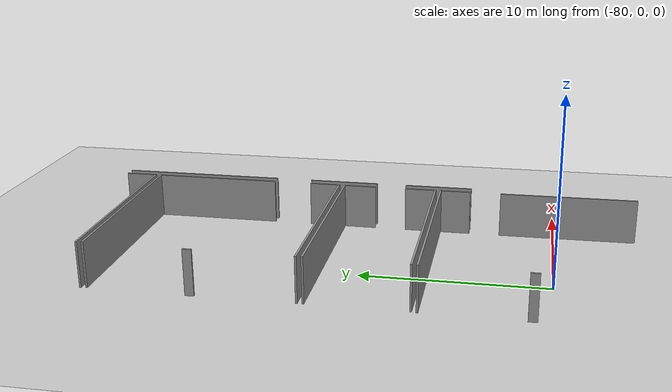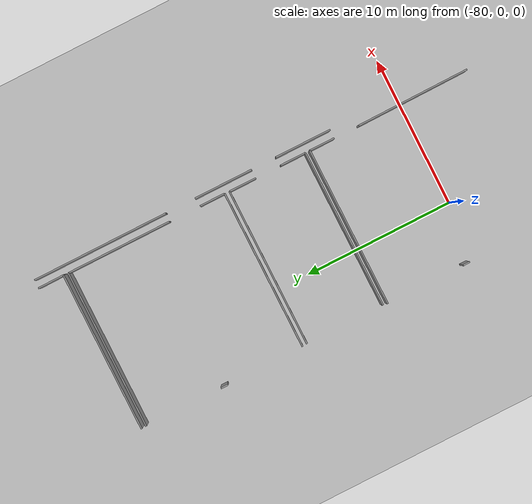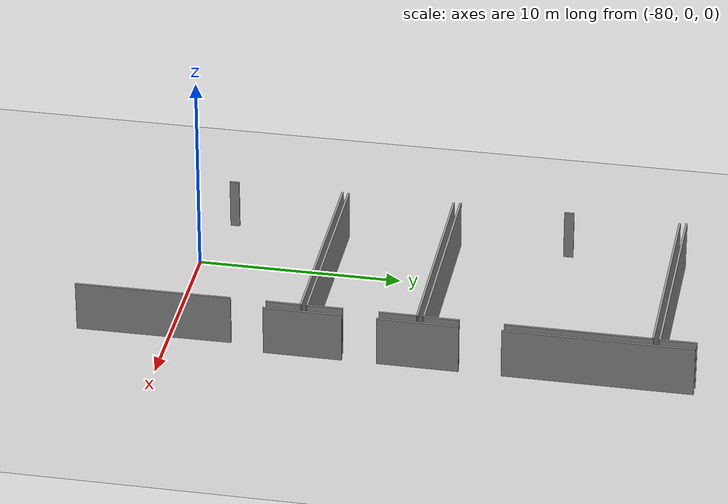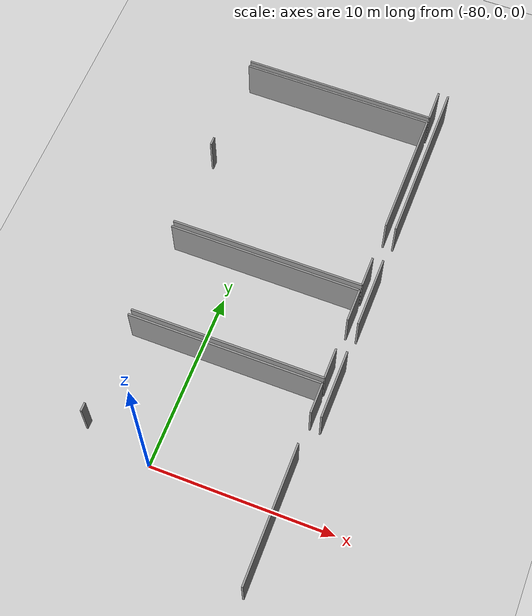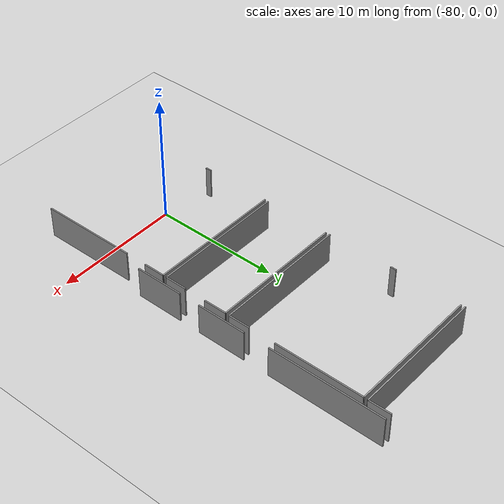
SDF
<sdf version="1.6">
 <world name="default">
  <model name="ground_plane">
   <static>1</static>
   <link name="link">
    <collision name="collision">
     <geometry><plane><normal>0 0 1</normal><size>100 100</size></plane></geometry>
     <surface><friction><ode><mu>100</mu><mu2>50</mu2></ode></friction></surface>
    </collision>
    <visual name="visual">
     <cast_shadows>0</cast_shadows>
     <geometry><plane><normal>0 0 1</normal><size>100 100</size></plane></geometry>
     <material>
      <script><uri>file://media/materials/scripts/gazebo.material</uri><name>Gazebo/Grey</name></script>
     </material>
    </visual>
   </link>
  </model>
  <model name="0510045905_A_40_1_103">
   <static>1</static>
   <link name="Wall_6">
    <collision name="Wall_6_Collision">
     <geometry><box><size>3.78799895941 0.1 2.5</size></box></geometry>
     <pose>1.89399947971 0 1.25 0 0 0</pose>
    </collision>
    <visual name="Wall_6_Visual">
     <pose>1.89399947971 0 1.25 0 0 0</pose>
     <geometry><box><size>3.78799895941 0.1 2.5</size></box></geometry>
     <material>
      <script><uri>file://media/materials/scripts/gazebo.material</uri><name>Gazebo/Grey</name></script>
      <ambient>1 1 1 1</ambient>
     </material>
    </visual>
    <pose>11.2497858543 -57.6877343705 0 0 0 1.57079632679</pose>
   </link>
   <link name="Wall_7">
    <collision name="Wall_7_Collision">
     <geometry><box><size>3.93088964043 0.1 2.5</size></box></geometry>
     <pose>1.96544482021 0 1.25 0 0 0</pose>
    </collision>
    <visual name="Wall_7_Visual">
     <pose>1.96544482021 0 1.25 0 0 0</pose>
     <geometry><box><size>3.93088964043 0.1 2.5</size></box></geometry>
     <material>
      <script><uri>file://media/materials/scripts/gazebo.material</uri><name>Gazebo/Grey</name></script>
      <ambient>1 1 1 1</ambient>
     </material>
    </visual>
    <pose>11.2497858543 -52.2279398235 0 0 0 1.57079632679</pose>
   </link>
   <link name="Wall_8">
    <collision name="Wall_8_Collision">
     <geometry><box><size>9.1188619506 0.1 2.5</size></box></geometry>
     <pose>4.5594309753 0 1.25 0 0 0</pose>
    </collision>
    <visual name="Wall_8_Visual">
     <pose>4.5594309753 0 1.25 0 0 0</pose>
     <geometry><box><size>9.1188619506 0.1 2.5</size></box></geometry>
     <material>
      <script><uri>file://media/materials/scripts/gazebo.material</uri><name>Gazebo/Grey</name></script>
      <ambient>1 1 1 1</ambient>
     </material>
    </visual>
    <pose>11.2497858543 -46.2648553644 0 0 0 1.57079632679</pose>
   </link>
   <link name="Wall_29">
    <collision name="Wall_29_Collision">
     <geometry><box><size>10.6802535485 0.1 2.5</size></box></geometry>
     <pose>5.34012677424 0 1.25 0 0 0</pose>
    </collision>
    <visual name="Wall_29_Visual">
     <pose>5.34012677424 0 1.25 0 0 0</pose>
     <geometry><box><size>10.6802535485 0.1 2.5</size></box></geometry>
     <material>
      <script><uri>file://media/materials/scripts/gazebo.material</uri><name>Gazebo/Grey</name></script>
      <ambient>1 1 1 1</ambient>
     </material>
    </visual>
    <pose>10.7104560192 -38.8804781635 0 0 0 3.14159265359</pose>
   </link>
   <link name="Wall_34">
    <collision name="Wall_34_Collision">
     <geometry><box><size>1.75233097392 0.1 2.5</size></box></geometry>
     <pose>0.876165486962 0 1.25 0 0 0</pose>
    </collision>
    <visual name="Wall_34_Visual">
     <pose>0.876165486962 0 1.25 0 0 0</pose>
     <geometry><box><size>1.75233097392 0.1 2.5</size></box></geometry>
     <material>
      <script><uri>file://media/materials/scripts/gazebo.material</uri><name>Gazebo/Grey</name></script>
      <ambient>1 1 1 1</ambient>
     </material>
    </visual>
    <pose>10.6937050691 -37.1282272546 0 0 0 -1.56123694244</pose>
   </link>
   <link name="Wall_35">
    <collision name="Wall_35_Collision">
     <geometry><box><size>10.6388837776 0.1 2.5</size></box></geometry>
     <pose>5.3194418888 0 1.25 0 0 0</pose>
    </collision>
    <visual name="Wall_35_Visual">
     <pose>5.3194418888 0 1.25 0 0 0</pose>
     <geometry><box><size>10.6388837776 0.1 2.5</size></box></geometry>
     <material>
      <script><uri>file://media/materials/scripts/gazebo.material</uri><name>Gazebo/Grey</name></script>
      <ambient>1 1 1 1</ambient>
     </material>
    </visual>
    <pose>10.6896442327 -50.0647830308 0 0 0 3.14159265359</pose>
   </link>
   <link name="Wall_36">
    <collision name="Wall_36_Collision">
     <geometry><box><size>0.479432498112 0.1 2.5</size></box></geometry>
     <pose>0.239716249056 0 1.25 0 0 0</pose>
    </collision>
    <visual name="Wall_36_Visual">
     <pose>0.239716249056 0 1.25 0 0 0</pose>
     <geometry><box><size>0.479432498112 0.1 2.5</size></box></geometry>
     <material>
      <script><uri>file://media/materials/scripts/gazebo.material</uri><name>Gazebo/Grey</name></script>
      <ambient>1 1 1 1</ambient>
     </material>
    </visual>
    <pose>0.0507604550675 -44.8811253593 0 0 0 1.57079632679</pose>
   </link>
   <link name="Wall_37">
    <collision name="Wall_37_Collision">
     <geometry><box><size>10.6373609639 0.1 2.5</size></box></geometry>
     <pose>5.31868048197 0 1.25 0 0 0</pose>
    </collision>
    <visual name="Wall_37_Visual">
     <pose>5.31868048197 0 1.25 0 0 0</pose>
     <geometry><box><size>10.6373609639 0.1 2.5</size></box></geometry>
     <material>
      <script><uri>file://media/materials/scripts/gazebo.material</uri><name>Gazebo/Grey</name></script>
      <ambient>1 1 1 1</ambient>
     </material>
    </visual>
    <pose>0.0507604550675 -39.2028070532 0 0 0 0.0</pose>
   </link>
   <link name="Wall_38">
    <collision name="Wall_38_Collision">
     <geometry><box><size>7.03336865415 0.1 2.5</size></box></geometry>
     <pose>3.51668432707 0 1.25 0 0 0</pose>
    </collision>
    <visual name="Wall_38_Visual">
     <pose>3.51668432707 0 1.25 0 0 0</pose>
     <geometry><box><size>7.03336865415 0.1 2.5</size></box></geometry>
     <material>
      <script><uri>file://media/materials/scripts/gazebo.material</uri><name>Gazebo/Grey</name></script>
      <ambient>1 1 1 1</ambient>
     </material>
    </visual>
    <pose>10.688121419 -39.2028070532 0 0 0 -1.57079632679</pose>
   </link>
   <link name="Wall_39">
    <collision name="Wall_39_Collision">
     <geometry><box><size>1.69539988315 0.1 2.5</size></box></geometry>
     <pose>0.847699941576 0 1.25 0 0 0</pose>
    </collision>
    <visual name="Wall_39_Visual">
     <pose>0.847699941576 0 1.25 0 0 0</pose>
     <geometry><box><size>1.69539988315 0.1 2.5</size></box></geometry>
     <material>
      <script><uri>file://media/materials/scripts/gazebo.material</uri><name>Gazebo/Grey</name></script>
      <ambient>1 1 1 1</ambient>
     </material>
    </visual>
    <pose>10.688121419 -48.3693838315 0 0 0 -1.56989812344</pose>
   </link>
   <link name="Wall_40">
    <collision name="Wall_40_Collision">
     <geometry><box><size>10.5934531703 0.1 2.5</size></box></geometry>
     <pose>5.29672658515 0 1.25 0 0 0</pose>
    </collision>
    <visual name="Wall_40_Visual">
     <pose>5.29672658515 0 1.25 0 0 0</pose>
     <geometry><box><size>10.5934531703 0.1 2.5</size></box></geometry>
     <material>
      <script><uri>file://media/materials/scripts/gazebo.material</uri><name>Gazebo/Grey</name></script>
      <ambient>1 1 1 1</ambient>
     </material>
    </visual>
    <pose>10.6703552597 -55.668483468 0 0 0 3.14159265359</pose>
   </link>
   <link name="Wall_41">
    <collision name="Wall_41_Collision">
     <geometry><box><size>10.5888847294 0.1 2.5</size></box></geometry>
     <pose>5.29444236468 0 1.25 0 0 0</pose>
    </collision>
    <visual name="Wall_41_Visual">
     <pose>5.29444236468 0 1.25 0 0 0</pose>
     <geometry><box><size>10.5888847294 0.1 2.5</size></box></geometry>
     <material>
      <script><uri>file://media/materials/scripts/gazebo.material</uri><name>Gazebo/Grey</name></script>
      <ambient>1 1 1 1</ambient>
     </material>
    </visual>
    <pose>0.0769020894272 -50.3911727569 0 0 0 0.0</pose>
   </link>
   <link name="Wall_42">
    <collision name="Wall_42_Collision">
     <geometry><box><size>1.82737638243 0.1 2.5</size></box></geometry>
     <pose>0.913688191215 0 1.25 0 0 0</pose>
    </collision>
    <visual name="Wall_42_Visual">
     <pose>0.913688191215 0 1.25 0 0 0</pose>
     <geometry><box><size>1.82737638243 0.1 2.5</size></box></geometry>
     <material>
      <script><uri>file://media/materials/scripts/gazebo.material</uri><name>Gazebo/Grey</name></script>
      <ambient>1 1 1 1</ambient>
     </material>
    </visual>
    <pose>10.6657868188 -50.3911727569 0 0 0 -1.57079632679</pose>
   </link>
   <link name="Wall_43">
    <collision name="Wall_43_Collision">
     <geometry><box><size>1.71647086764 0.1 2.5</size></box></geometry>
     <pose>0.858235433821 0 1.25 0 0 0</pose>
    </collision>
    <visual name="Wall_43_Visual">
     <pose>0.858235433821 0 1.25 0 0 0</pose>
     <geometry><box><size>1.71647086764 0.1 2.5</size></box></geometry>
     <material>
      <script><uri>file://media/materials/scripts/gazebo.material</uri><name>Gazebo/Grey</name></script>
      <ambient>1 1 1 1</ambient>
     </material>
    </visual>
    <pose>10.6657868188 -53.9520186798 0 0 0 -1.56813479234</pose>
   </link>
   <link name="Wall_45">
    <collision name="Wall_45_Collision">
     <geometry><box><size>0.467249988896 0.1 2.5</size></box></geometry>
     <pose>0.233624994448 0 1.25 0 0 0</pose>
    </collision>
    <visual name="Wall_45_Visual">
     <pose>0.233624994448 0 1.25 0 0 0</pose>
     <geometry><box><size>0.467249988896 0.1 2.5</size></box></geometry>
     <material>
      <script><uri>file://media/materials/scripts/gazebo.material</uri><name>Gazebo/Grey</name></script>
      <ambient>1 1 1 1</ambient>
     </material>
    </visual>
    <pose>0.0302024707652 -61.6762371275 0 0 0 1.57079632679</pose>
   </link>
   <link name="Wall_46">
    <collision name="Wall_46_Collision">
     <geometry><box><size>10.6398989867 0.1 2.5</size></box></geometry>
     <pose>5.31994949335 0 1.25 0 0 0</pose>
    </collision>
    <visual name="Wall_46_Visual">
     <pose>5.31994949335 0 1.25 0 0 0</pose>
     <geometry><box><size>10.6398989867 0.1 2.5</size></box></geometry>
     <material>
      <script><uri>file://media/materials/scripts/gazebo.material</uri><name>Gazebo/Grey</name></script>
      <ambient>1 1 1 1</ambient>
     </material>
    </visual>
    <pose>0.0302024707652 -55.9733000006 0 0 0 0.0</pose>
   </link>
   <link name="Wall_47">
    <collision name="Wall_47_Collision">
     <geometry><box><size>1.68753132872 0.1 2.5</size></box></geometry>
     <pose>0.843765664359 0 1.25 0 0 0</pose>
    </collision>
    <visual name="Wall_47_Visual">
     <pose>0.843765664359 0 1.25 0 0 0</pose>
     <geometry><box><size>1.68753132872 0.1 2.5</size></box></geometry>
     <material>
      <script><uri>file://media/materials/scripts/gazebo.material</uri><name>Gazebo/Grey</name></script>
      <ambient>1 1 1 1</ambient>
     </material>
    </visual>
    <pose>10.6701014575 -55.9733000006 0 0 0 -1.57079632679</pose>
   </link>
   <link name="Wall_48">
    <collision name="Wall_48_Collision">
     <geometry><box><size>7.55416475801 0.1 2.5</size></box></geometry>
     <pose>3.777082379 0 1.25 0 0 0</pose>
    </collision>
    <visual name="Wall_48_Visual">
     <pose>3.777082379 0 1.25 0 0 0</pose>
     <geometry><box><size>7.55416475801 0.1 2.5</size></box></geometry>
     <material>
      <script><uri>file://media/materials/scripts/gazebo.material</uri><name>Gazebo/Grey</name></script>
      <ambient>1 1 1 1</ambient>
     </material>
    </visual>
    <pose>10.6701014575 -59.3732352811 0 0 0 -1.56269920174</pose>
   </link>
   <pose>-83.8 62.4001624335 0 0 0 0</pose>
  </model>
 </world>
</sdf>
